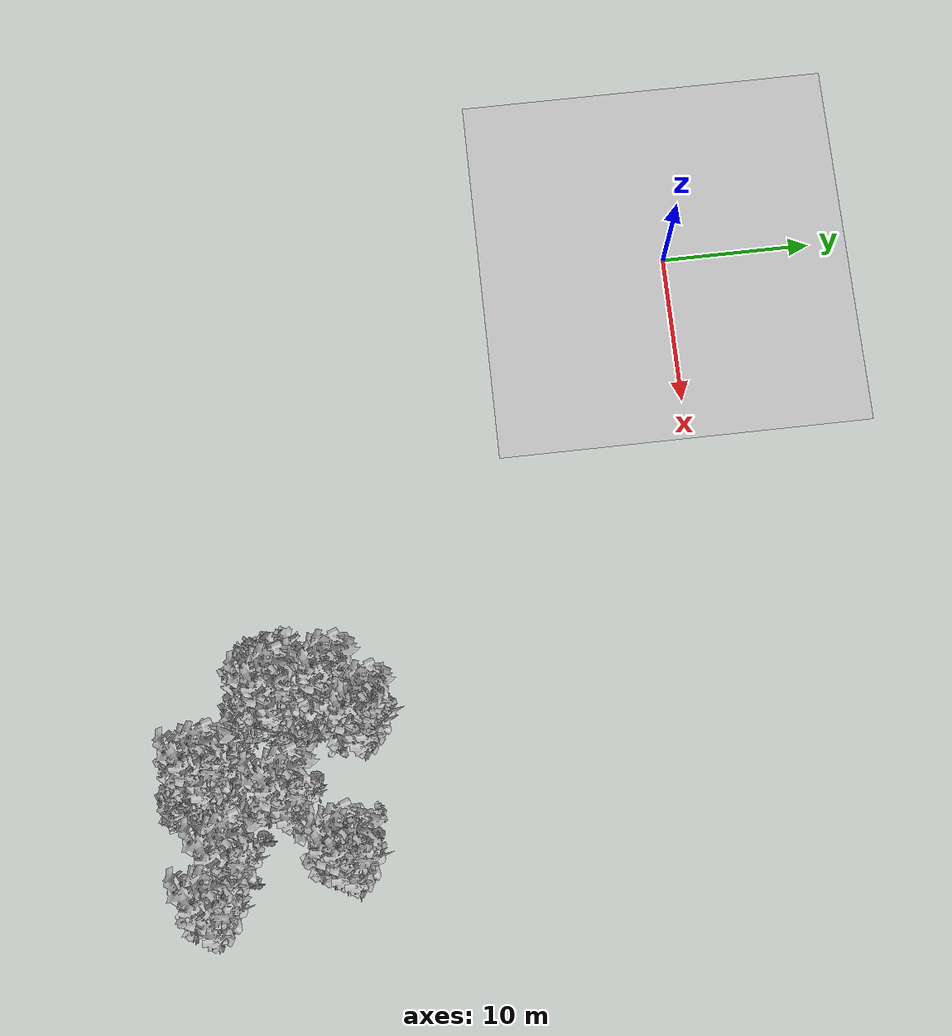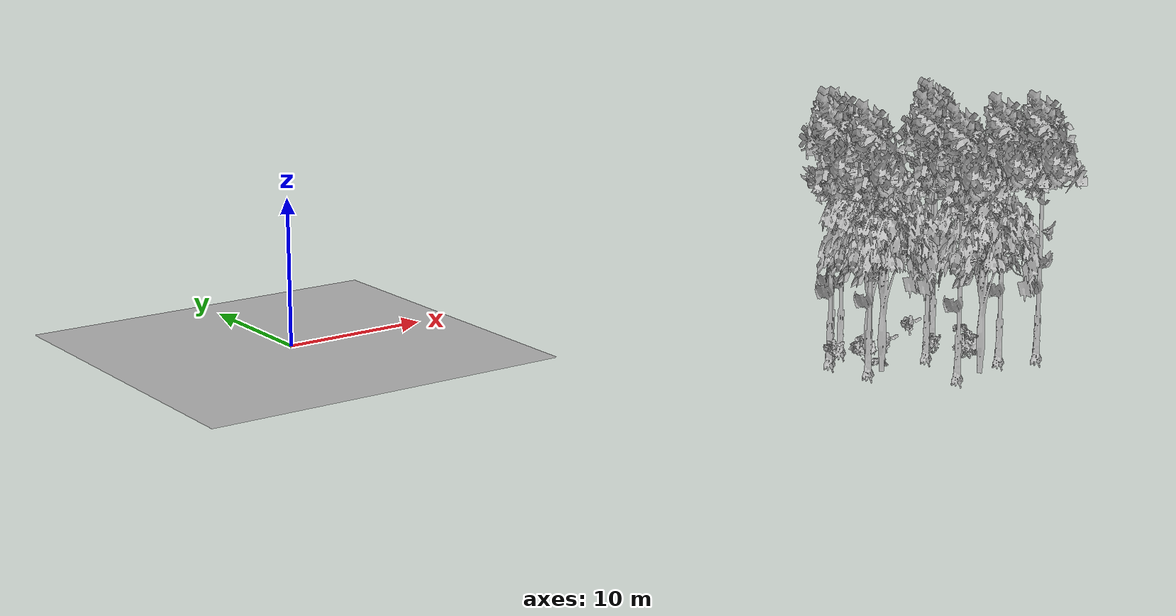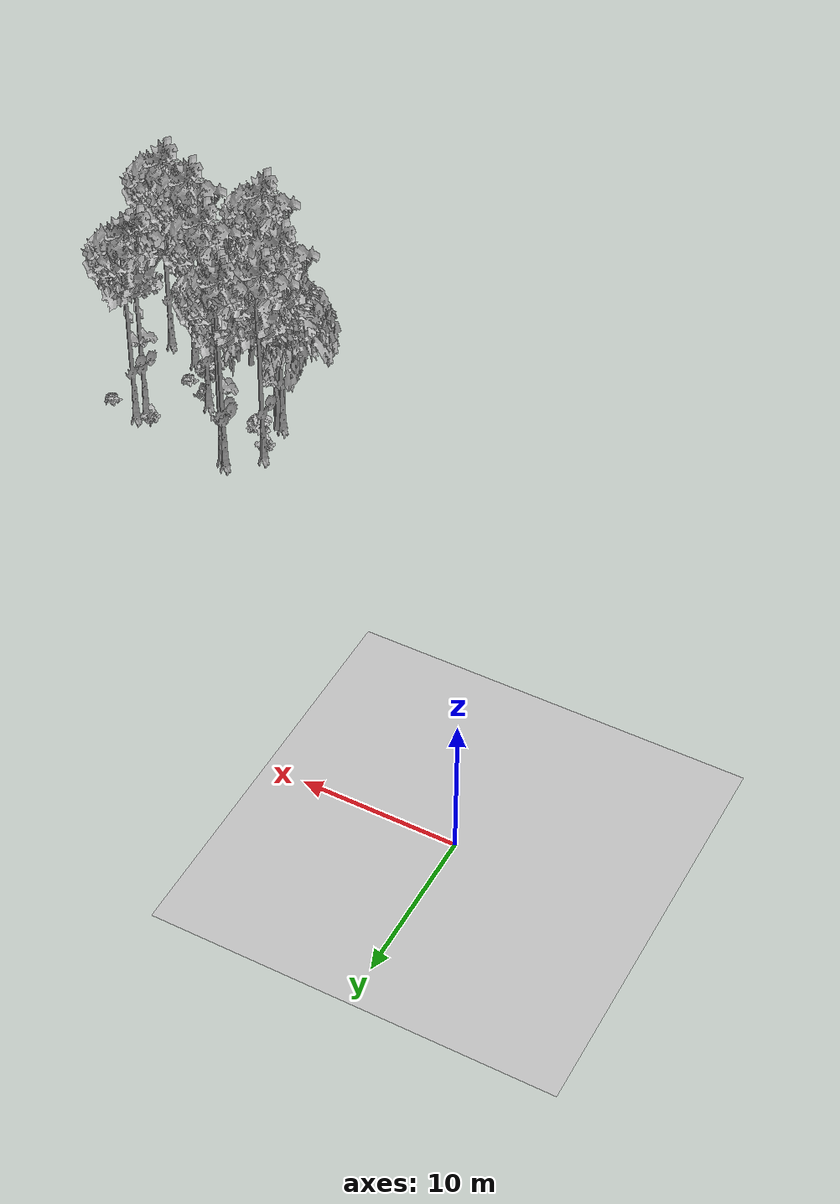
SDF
<sdf version="1.7">
 <world name="default">
  <model name="ground_plane">
   <static>1</static>
   <link name="link">
    <collision name="collision">
     <pose>-50 0 0 0 -0 0</pose>
     <geometry><plane><normal>0 0 1</normal><size>80 80</size></plane></geometry>
     <surface><contact><ode><min_depth>0.01</min_depth><max_vel>0</max_vel></ode></contact></surface>
    </collision>
    <visual name="grass">
     <cast_shadows>0</cast_shadows>
     <geometry>
      <mesh>
       <scale>0.46714285714285714 0.46714285714285714 0.1</scale>
       <uri>file://grass_plane/meshes/grass_plane.dae</uri>
      </mesh>
     </geometry>
    </visual>
   </link>
  </model>
  <model name="Tree 13">
   <static>1</static>
   <pose>38.2498424434265 -30.657005128210606 0 1.57079 -0 0</pose>
   <link name="link">
    <collision name="collision">
     <geometry><mesh><scale>3.5 5 3.5</scale><uri>model://tree_9/meshes/tree_9.obj</uri></mesh></geometry>
    </collision>
    <visual name="visual">
     <geometry><mesh><scale>3.5 5 3.5</scale><uri>model://tree_9/meshes/tree_9.obj</uri></mesh></geometry>
    </visual>
   </link>
  </model>
  <model name="Tree 59">
   <static>1</static>
   <pose>28.425562175533585 -21.61017504084601 0 1.57079 -0 0</pose>
   <link name="link">
    <collision name="collision">
     <geometry><mesh><scale>3.5 5 3.5</scale><uri>model://tree_9/meshes/tree_9.obj</uri></mesh></geometry>
    </collision>
    <visual name="visual">
     <geometry><mesh><scale>3.5 5 3.5</scale><uri>model://tree_9/meshes/tree_9.obj</uri></mesh></geometry>
    </visual>
   </link>
  </model>
  <model name="Tree 61">
   <static>1</static>
   <pose>35.708716173730124 -29.683372735008184 0 1.57079 -0 0</pose>
   <link name="link">
    <collision name="collision">
     <geometry><mesh><scale>3.5 5 3.5</scale><uri>model://tree_9/meshes/tree_9.obj</uri></mesh></geometry>
    </collision>
    <visual name="visual">
     <geometry><mesh><scale>3.5 5 3.5</scale><uri>model://tree_9/meshes/tree_9.obj</uri></mesh></geometry>
    </visual>
   </link>
  </model>
  <model name="Tree 119">
   <static>1</static>
   <pose>32.095112833179 -31.376810671592708 0 1.57079 -0 0</pose>
   <link name="link">
    <collision name="collision">
     <geometry><mesh><scale>3.5 5 3.5</scale><uri>model://tree_2/meshes/tree_2.obj</uri></mesh></geometry>
    </collision>
    <visual name="visual">
     <geometry><mesh><scale>3.5 5 3.5</scale><uri>model://tree_2/meshes/tree_2.obj</uri></mesh></geometry>
    </visual>
   </link>
  </model>
  <model name="Tree 129">
   <static>1</static>
   <pose>32.53090878897112 -26.266580494990095 0 1.57079 -0 0</pose>
   <link name="link">
    <collision name="collision">
     <geometry><mesh><scale>3.5 5 3.5</scale><uri>model://tree_9/meshes/tree_9.obj</uri></mesh></geometry>
    </collision>
    <visual name="visual">
     <geometry><mesh><scale>3.5 5 3.5</scale><uri>model://tree_9/meshes/tree_9.obj</uri></mesh></geometry>
    </visual>
   </link>
  </model>
  <model name="Tree 152">
   <static>1</static>
   <pose>28.89035099154465 -21.994116750870106 0 1.57079 -0 0</pose>
   <link name="link">
    <collision name="collision">
     <geometry><mesh><scale>3.5 5 3.5</scale><uri>model://tree_9/meshes/tree_9.obj</uri></mesh></geometry>
    </collision>
    <visual name="visual">
     <geometry><mesh><scale>3.5 5 3.5</scale><uri>model://tree_9/meshes/tree_9.obj</uri></mesh></geometry>
    </visual>
   </link>
  </model>
  <model name="Tree 389">
   <static>1</static>
   <pose>26.93469055671133 -26.651767513406774 0 1.57079 -0 0</pose>
   <link name="link">
    <collision name="collision">
     <geometry><mesh><scale>3.5 5 3.5</scale><uri>model://tree_9/meshes/tree_9.obj</uri></mesh></geometry>
    </collision>
    <visual name="visual">
     <geometry><mesh><scale>3.5 5 3.5</scale><uri>model://tree_9/meshes/tree_9.obj</uri></mesh></geometry>
    </visual>
   </link>
  </model>
  <model name="Tree 451">
   <static>1</static>
   <pose>27.12078547528273 -26.3406553688515 0 1.57079 -0 0</pose>
   <link name="link">
    <collision name="collision">
     <geometry><mesh><scale>3.5 5 3.5</scale><uri>model://tree_2/meshes/tree_2.obj</uri></mesh></geometry>
    </collision>
    <visual name="visual">
     <geometry><mesh><scale>3.5 5 3.5</scale><uri>model://tree_2/meshes/tree_2.obj</uri></mesh></geometry>
    </visual>
   </link>
  </model>
  <model name="Tree 470">
   <static>1</static>
   <pose>35.85875524188543 -23.561728507576074 0 1.57079 -0 0</pose>
   <link name="link">
    <collision name="collision">
     <geometry><mesh><scale>3.5 5 3.5</scale><uri>model://tree_9/meshes/tree_9.obj</uri></mesh></geometry>
    </collision>
    <visual name="visual">
     <geometry><mesh><scale>3.5 5 3.5</scale><uri>model://tree_9/meshes/tree_9.obj</uri></mesh></geometry>
    </visual>
   </link>
  </model>
  <model name="Tree 479">
   <static>1</static>
   <pose>26.545235689466708 -23.465769849038196 0 1.57079 -0 0</pose>
   <link name="link">
    <collision name="collision">
     <geometry><mesh><scale>3.5 5 3.5</scale><uri>model://tree_9/meshes/tree_9.obj</uri></mesh></geometry>
    </collision>
    <visual name="visual">
     <geometry><mesh><scale>3.5 5 3.5</scale><uri>model://tree_9/meshes/tree_9.obj</uri></mesh></geometry>
    </visual>
   </link>
  </model>
  <model name="Tree 521">
   <static>1</static>
   <pose>27.329825323837852 -27.38342501877753 0 1.57079 -0 0</pose>
   <link name="link">
    <collision name="collision">
     <geometry><mesh><scale>3.5 5 3.5</scale><uri>model://tree_2/meshes/tree_2.obj</uri></mesh></geometry>
    </collision>
    <visual name="visual">
     <geometry><mesh><scale>3.5 5 3.5</scale><uri>model://tree_2/meshes/tree_2.obj</uri></mesh></geometry>
    </visual>
   </link>
  </model>
  <model name="Tree 543">
   <static>1</static>
   <pose>36.22697797062119 -22.874534962593707 0 1.57079 -0 0</pose>
   <link name="link">
    <collision name="collision">
     <geometry><mesh><scale>3.5 5 3.5</scale><uri>model://tree_9/meshes/tree_9.obj</uri></mesh></geometry>
    </collision>
    <visual name="visual">
     <geometry><mesh><scale>3.5 5 3.5</scale><uri>model://tree_9/meshes/tree_9.obj</uri></mesh></geometry>
    </visual>
   </link>
  </model>
  <model name="Tree 579">
   <static>1</static>
   <pose>30.7266053380755 -30.800171736901056 0 1.57079 -0 0</pose>
   <link name="link">
    <collision name="collision">
     <geometry><mesh><scale>3.5 5 3.5</scale><uri>model://tree_9/meshes/tree_9.obj</uri></mesh></geometry>
    </collision>
    <visual name="visual">
     <geometry><mesh><scale>3.5 5 3.5</scale><uri>model://tree_9/meshes/tree_9.obj</uri></mesh></geometry>
    </visual>
   </link>
  </model>
  <model name="Bush 20">
   <static>1</static>
   <pose>32.9559608633886 -26.492109773485844 0 1.57079 -0 0</pose>
   <link name="link">
    <collision name="collision">
     <geometry><mesh><scale>2 2 2</scale><uri>model://bush_4/meshes/bush_4.obj</uri></mesh></geometry>
     <surface><contact><collide_without_contact>false</collide_without_contact></contact></surface>
    </collision>
    <visual name="visual">
     <geometry><mesh><scale>2 2 2</scale><uri>model://bush_4/meshes/bush_4.obj</uri></mesh></geometry>
    </visual>
   </link>
  </model>
  <model name="Bush 76">
   <static>1</static>
   <pose>34.85113301184013 -22.494454159930548 0 1.57079 -0 0</pose>
   <link name="link">
    <collision name="collision">
     <geometry><mesh><scale>2 2 2</scale><uri>model://bush_0/meshes/bush_0.obj</uri></mesh></geometry>
     <surface><contact><collide_without_contact>false</collide_without_contact></contact></surface>
    </collision>
    <visual name="visual">
     <geometry><mesh><scale>2 2 2</scale><uri>model://bush_0/meshes/bush_0.obj</uri></mesh></geometry>
    </visual>
   </link>
  </model>
  <model name="Bush 80">
   <static>1</static>
   <pose>33.729557550584246 -28.412854586469276 0 1.57079 -0 0</pose>
   <link name="link">
    <collision name="collision">
     <geometry><mesh><scale>2 2 2</scale><uri>model://bush_4/meshes/bush_4.obj</uri></mesh></geometry>
     <surface><contact><collide_without_contact>false</collide_without_contact></contact></surface>
    </collision>
    <visual name="visual">
     <geometry><mesh><scale>2 2 2</scale><uri>model://bush_4/meshes/bush_4.obj</uri></mesh></geometry>
    </visual>
   </link>
  </model>
  <model name="Bush 152">
   <static>1</static>
   <pose>28.40220299832322 -26.165572205985555 0 1.57079 -0 0</pose>
   <link name="link">
    <collision name="collision">
     <geometry><mesh><scale>2 2 2</scale><uri>model://bush_2/meshes/bush_2.obj</uri></mesh></geometry>
     <surface><contact><collide_without_contact>false</collide_without_contact></contact></surface>
    </collision>
    <visual name="visual">
     <geometry><mesh><scale>2 2 2</scale><uri>model://bush_2/meshes/bush_2.obj</uri></mesh></geometry>
    </visual>
   </link>
  </model>
  <model name="Bush 253">
   <static>1</static>
   <pose>27.874121436262797 -25.414276638173714 0 1.57079 -0 0</pose>
   <link name="link">
    <collision name="collision">
     <geometry><mesh><scale>2 2 2</scale><uri>model://bush_1/meshes/bush_1.obj</uri></mesh></geometry>
     <surface><contact><collide_without_contact>false</collide_without_contact></contact></surface>
    </collision>
    <visual name="visual">
     <geometry><mesh><scale>2 2 2</scale><uri>model://bush_1/meshes/bush_1.obj</uri></mesh></geometry>
    </visual>
   </link>
  </model>
  <model name="Bush 382">
   <static>1</static>
   <pose>35.002396195415386 -27.806939595773503 0 1.57079 -0 0</pose>
   <link name="link">
    <collision name="collision">
     <geometry><mesh><scale>2 2 2</scale><uri>model://bush_2/meshes/bush_2.obj</uri></mesh></geometry>
     <surface><contact><collide_without_contact>false</collide_without_contact></contact></surface>
    </collision>
    <visual name="visual">
     <geometry><mesh><scale>2 2 2</scale><uri>model://bush_2/meshes/bush_2.obj</uri></mesh></geometry>
    </visual>
   </link>
  </model>
  <model name="Bush 400">
   <static>1</static>
   <pose>26.645590485928366 -23.713257784505515 0 1.57079 -0 0</pose>
   <link name="link">
    <collision name="collision">
     <geometry><mesh><scale>2 2 2</scale><uri>model://bush_0/meshes/bush_0.obj</uri></mesh></geometry>
     <surface><contact><collide_without_contact>false</collide_without_contact></contact></surface>
    </collision>
    <visual name="visual">
     <geometry><mesh><scale>2 2 2</scale><uri>model://bush_0/meshes/bush_0.obj</uri></mesh></geometry>
    </visual>
   </link>
  </model>
  <model name="Bush 546">
   <static>1</static>
   <pose>30.604911075840008 -24.603270641553348 0 1.57079 -0 0</pose>
   <link name="link">
    <collision name="collision">
     <geometry><mesh><scale>2 2 2</scale><uri>model://bush_0/meshes/bush_0.obj</uri></mesh></geometry>
     <surface><contact><collide_without_contact>false</collide_without_contact></contact></surface>
    </collision>
    <visual name="visual">
     <geometry><mesh><scale>2 2 2</scale><uri>model://bush_0/meshes/bush_0.obj</uri></mesh></geometry>
    </visual>
   </link>
  </model>
  <model name="Bush 561">
   <static>1</static>
   <pose>38.56853255801151 -23.613985792957656 0 1.57079 -0 0</pose>
   <link name="link">
    <collision name="collision">
     <geometry><mesh><scale>2 2 2</scale><uri>model://bush_2/meshes/bush_2.obj</uri></mesh></geometry>
     <surface><contact><collide_without_contact>false</collide_without_contact></contact></surface>
    </collision>
    <visual name="visual">
     <geometry><mesh><scale>2 2 2</scale><uri>model://bush_2/meshes/bush_2.obj</uri></mesh></geometry>
    </visual>
   </link>
  </model>
  <model name="Bush 616">
   <static>1</static>
   <pose>33.970204852058245 -28.842766647402662 0 1.57079 -0 0</pose>
   <link name="link">
    <collision name="collision">
     <geometry><mesh><scale>2 2 2</scale><uri>model://bush_1/meshes/bush_1.obj</uri></mesh></geometry>
     <surface><contact><collide_without_contact>false</collide_without_contact></contact></surface>
    </collision>
    <visual name="visual">
     <geometry><mesh><scale>2 2 2</scale><uri>model://bush_1/meshes/bush_1.obj</uri></mesh></geometry>
    </visual>
   </link>
  </model>
 </world>
</sdf>
